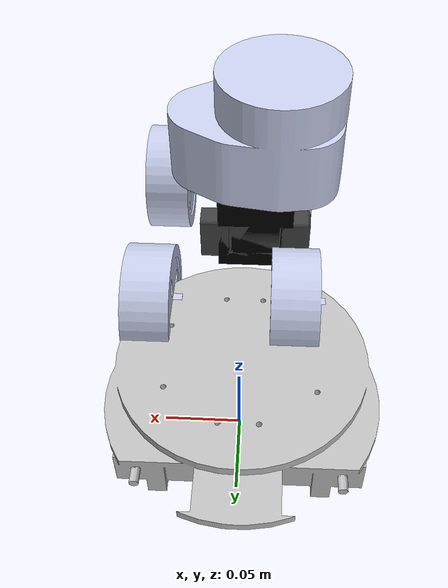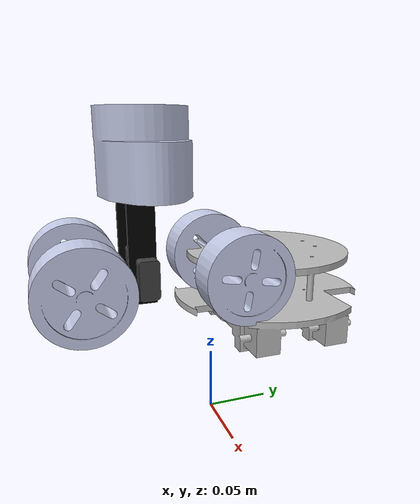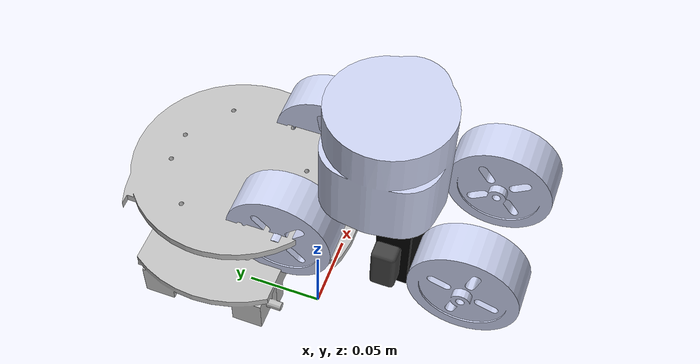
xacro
<?xml version="1.0" encoding="utf-8"?>
<robot
  xmlns:xacro="http://www.ros.org/wiki/xacro"
  name="robot">

  <!-- Material Definitions -->
  <material
    name="chassis_color">
    <color
      rgba="0.752941176470588 0.752941176470588 0.752941176470588 1" />
  </material>

  <material
    name="ebox_color">
    <color
      rgba="0 0 0 1" />
  </material>

  <material
    name="battery_color">
    <color
      rgba="0.250980392156863 0.250980392156863 0.250980392156863 1" />
  </material>

  <material
    name="lidar_color">
    <color
      rgba="0.792156862745098 0.819607843137255 0.933333333333333 1" />
  </material>

  <material
    name="wheel_color">
    <color
      rgba="0.792156862745098 0.819607843137255 0.933333333333333 1" />
  </material>

  <!-- Robot -->

  <!-- BASE LINK -->

  <link
    name="base_link">
  </link>

  <!-- BASE LINK FOOTPRINT -->
  <joint
    name="base_footprint_joint" type="fixed">
      <parent link="base_link"/>
      <child link="base_footprint"/>
      <origin xyz="0 0 0" rpy="0 0 0"/>
  </joint>

  <link name="base_footprint">
  </link>

  <!-- Chassis -->
  <link
    name="chassis_link">
    <inertial>
      <origin
        xyz="-0.00388152940223453 0.0491487550157473 0.0959822836251013"
        rpy="0 0 0" />
      <mass
        value="0.253438557114572" />
      <inertia
        ixx="0.000230915983626972"
        ixy="-1.09834124977415E-21"
        ixz="-1.08995305646286E-20"
        iyy="0.000388552862570868"
        iyz="8.74964921922857E-21"
        izz="0.000171792964937591" />
    </inertial>
    <visual>
      <origin
        xyz="0 0 0"
        rpy="0 0 0" />
      <geometry>
        <mesh
          filename="package://rccar_lab/car_urdf/meshes/base_link.STL" />
      </geometry>
      <material
        name="chassis_color"/>
    </visual>
    <collision>
      <origin
        xyz="0 0 0"
        rpy="0 0 0" />
      <geometry>
        <mesh
          filename="package://rccar_lab/car_urdf/meshes/base_link.STL" />
      </geometry>
    </collision>
  </link>
  <joint
    name="chassis_joint"
    type="fixed">
    <origin
      xyz="-0.00388152940223453 0.0491487550157473 0.0959822836251013"
      rpy="0 0 0" />
    <parent
      link="base_link" />
    <child
      link="chassis_link" />
    <axis
      xyz="0 0 0" />
  </joint>

  <gazebo reference="chassis_link">
      <material>Gazebo/Grey</material>
  </gazebo>

  <!-- Electrical Box -->
  <link
    name="ebox_link">
    <inertial>
      <origin
        xyz="2.38524477946811E-17 0.00665420516682762 1.38777878078145E-17"
        rpy="0 0 0" />
      <mass
        value="0.0194293141652943" />
      <inertia
        ixx="5.88923381835339E-06"
        ixy="-1.73689752951498E-21"
        ixz="1.52034934940776E-21"
        iyy="1.88651943786397E-05"
        iyz="-1.7640556224745E-21"
        izz="1.44863163441747E-05" />
    </inertial>
    <visual>
      <origin
        xyz="0 0 0"
        rpy="0 0 0" />
      <geometry>
        <mesh
          filename="package://rccar_lab/car_urdf/meshes/ebox_link.STL" />
      </geometry>
      <material
        name="ebox_color"/>
    </visual>
    <collision>
      <origin
        xyz="0 0 0"
        rpy="0 0 0" />
      <geometry>
        <mesh
          filename="package://rccar_lab/car_urdf/meshes/ebox_link.STL" />
      </geometry>
    </collision>
  </link>
  <joint
    name="ebox_joint"
    type="fixed">
    <origin
      xyz="-0.0036768 -0.095982 0.0485"
      rpy="${pi/2} 0 0" />
    <parent
      link="chassis_link" />
    <child
      link="ebox_link" />
    <axis
      xyz="0 0 0" />
  </joint>

  <gazebo reference="ebox_link">
    <material>Gazebo/DarkGrey</material>
  </gazebo>

  <!-- Battery -->

  <link
    name="battery_link">
    <inertial>
      <origin
        xyz="-8.23993651088983E-18 0.0074804833993982 -0.000123841648641848"
        rpy="0 0 0" />
      <mass
        value="0.0281697989109725" />
      <inertia
        ixx="1.06924152126357E-05"
        ixy="1.59206567495512E-22"
        ixz="-1.36499816485458E-21"
        iyy="1.21105909928422E-05"
        iyz="6.80855023768559E-11"
        izz="2.44479179923402E-06" />
    </inertial>
    <visual>
      <origin
        xyz="0 0 0"
        rpy="0 0 0" />
      <geometry>
        <mesh
          filename="package://rccar_lab/car_urdf/meshes/battery_link.STL" />
      </geometry>
      <material
        name="battery_color"/>
    </visual>
    <collision>
      <origin
        xyz="0 0 0"
        rpy="0 0 0" />
      <geometry>
        <mesh
          filename="package://rccar_lab/car_urdf/meshes/battery_link.STL" />
      </geometry>
    </collision>
  </link>
  <joint
    name="battery_joint"
    type="fixed">
    <origin
      xyz="-0.0036768 -0.095982 0.0285"
      rpy="${pi/2} 0 0" />
    <parent
      link="chassis_link" />
    <child
      link="battery_link" />
    <axis
      xyz="0 0 0" />
  </joint>

  <gazebo reference="battery_link">
      <material>Gazebo/DarkGrey</material>
  </gazebo>

  <!-- LiDAR -->
  <link
    name="laser_frame">
    <inertial>
      <origin
        xyz="0.00645097632173484 -0.0220370930302956 1.38777878078145E-17"
        rpy="0 0 0" />
      <mass
        value="0.291987614489637" />
      <inertia
        ixx="0.000179322343491855"
        ixy="1.7915823262772E-05"
        ixz="-2.87404142118372E-20"
        iyy="0.00023562662350046"
        iyz="8.52970502955622E-21"
        izz="0.000240449680414699" />
    </inertial>
    <visual>
      <origin
        xyz="0 0 0"
        rpy="${pi/2} 0 0" />
      <geometry>
        <mesh
          filename="package://rccar_lab/car_urdf/meshes/lidar_link.STL" />
      </geometry>
      <material
        name="lidar_color"/>
    </visual>

    <collision>
      <origin
        xyz="0 0 0"
        rpy="0 0 0" />
      <geometry>
        <mesh
          filename="package://rccar_lab/car_urdf/meshes/lidar_link.STL" />
      </geometry>
    </collision>
  </link>
  <joint
    name="lidar_joint"
    type="fixed">
    <origin
      xyz="-0.016177 -0.095982 0.13493"
      rpy="0 0 0" />
    <parent
      link="chassis_link" />
    <child
      link="laser_frame" />
    <axis
      xyz="0 0 0" />
  </joint>

  <gazebo reference="laser_frame">
      <material>Gazebo/DarkGrey</material>
      <sensor name="laser" type="gpu_lidar">
        <pose> 0 0 0 0 0 0 </pose>
        <visualize>true</visualize>
        <update_rate>10</update_rate>
        <topic>scan</topic>
        <gz_frame_id>laser_frame</gz_frame_id>
        <lidar>
          <scan>
            <horizontal>
              <samples>360</samples>
              <resolution>1</resolution>
              <min_angle>-3.14</min_angle>
              <max_angle>3.14</max_angle>
            </horizontal>
          </scan>
          <range>
            <min>0.15</min>
            <max>12</max>
            <resolution>0.01</resolution>
          </range>

          <noise>
            <type>gaussian</type>
            <mean>0.0</mean>
            <stddev>0.001</stddev>
          </noise>

        </lidar>

        <always_on>1</always_on>
        <visualize>1</visualize>

      </sensor>

  </gazebo>

  <!-- Front Right Wheel -->
  <link
    name="fr_wheel_link">
    <inertial>
      <origin
        xyz="-2.77555756156289E-17 -0.0170468370852515 0"
        rpy="0 0 0" />
      <mass
        value="0.0746841951683647" />
      <inertia
        ixx="2.49513056185901E-05"
        ixy="-6.2651021722227E-22"
        ixz="-4.2351647362715E-22"
        iyy="4.21618272671167E-05"
        iyz="4.23110158097473E-21"
        izz="2.49513056185901E-05" />
    </inertial>
    <visual>
      <origin
        xyz="0 0 0"
        rpy="0 0 0" />
      <geometry>
        <mesh
          filename="package://rccar_lab/car_urdf/meshes/fr_wheel_link.STL" />
      </geometry>
      <material
        name="wheel_color"/>
    </visual>
    <collision>
      <origin
        xyz="0 0 0"
        rpy="0 0 0" />
      <geometry>
        <mesh
          filename="package://rccar_lab/car_urdf/meshes/fr_wheel_link.STL" />
      </geometry>
    </collision>
  </link>
  <joint
    name="fr_wheel_joint"
    type="continuous">
    <origin
      xyz="-0.042027 -0.15098 0.0325"
      rpy="3.1416 0.31457 1.5708" />
    <parent
      link="chassis_link" />
    <child
      link="fr_wheel_link" />
    <axis
      xyz="0 1 0" />
  </joint>

  <gazebo reference="fr_wheel_link">
    <material>Gazebo/FlatBlack</material>
  </gazebo>

  <!-- Front Left Wheel -->

  <link
    name="fl_wheel_link">
    <inertial>
      <origin
        xyz="2.77555756156289E-17 -0.0170468370852515 -2.77555756156289E-17"
        rpy="0 0 0" />
      <mass
        value="0.0746841951683647" />
      <inertia
        ixx="2.49513056185901E-05"
        ixy="1.22799028140705E-21"
        ixz="0"
        iyy="4.21618272671167E-05"
        iyz="3.24468513501506E-21"
        izz="2.49513056185901E-05" />
    </inertial>
    <visual>
      <origin
        xyz="0 0 0"
        rpy="0 0 0" />
      <geometry>
        <mesh
          filename="package://rccar_lab/car_urdf/meshes/fl_wheel_link.STL" />
      </geometry>
      <material
        name="wheel_color"/>
    </visual>
    <collision>
      <origin
        xyz="0 0 0"
        rpy="0 0 0" />
      <geometry>
        <mesh
          filename="package://rccar_lab/car_urdf/meshes/fl_wheel_link.STL" />
      </geometry>
    </collision>
  </link>
  <joint
    name="fl_wheel_joint"
    type="continuous">
    <origin
      xyz="0.034673 -0.15098 0.0325"
      rpy="3.1416 0.84097 -1.5708" />
    <parent
      link="chassis_link" />
    <child
      link="fl_wheel_link" />
    <axis
      xyz="0 1 0" />
  </joint>
  <gazebo reference="fr_wheel_link">
    <material>Gazebo/FlatBlack</material>
  </gazebo>

  <!-- Back Left Wheel-->

  <link
    name="bl_wheel_link">
    <inertial>
      <origin
        xyz="4.5102810375397E-17 -0.0170468370852515 -2.08166817117217E-17"
        rpy="0 0 0" />
      <mass
        value="0.0746841951683647" />
      <inertia
        ixx="2.49513056185901E-05"
        ixy="3.43897869697203E-21"
        ixz="-1.6940658945086E-21"
        iyy="4.21618272671167E-05"
        iyz="2.99257736417889E-21"
        izz="2.49513056185901E-05" />
    </inertial>
    <visual>
      <origin
        xyz="0 0 0"
        rpy="0 0 0" />
      <geometry>
        <mesh
          filename="package://rccar_lab/car_urdf/meshes/bl_wheel_link.STL" />
      </geometry>
      <material
        name="wheel_color"/>
    </visual>
    <collision>
      <origin
        xyz="0 0 0"
        rpy="0 0 0" />
      <geometry>
        <mesh
          filename="package://rccar_lab/car_urdf/meshes/bl_wheel_link.STL" />
      </geometry>
    </collision>
  </link>
  <joint
    name="bl_wheel_joint"
    type="continuous">
    <origin
      xyz="0.034673 -0.040982 0.0325"
      rpy="0 -0.54324 1.5708" />
    <parent
      link="chassis_link" />
    <child
      link="bl_wheel_link" />
    <axis
      xyz="0 1 0" />
  </joint>

  <gazebo reference="bl_wheel_link">
    <material>Gazebo/FlatBlack</material>
  </gazebo>

  <!-- Back Right Wheel -->
  <link
    name="br_wheel_link">
    <inertial>
      <origin
        xyz="2.77555756156289E-17 -0.0170468370852515 -3.12250225675825E-17"
        rpy="0 0 0" />
      <mass
        value="0.0746841951683647" />
      <inertia
        ixx="2.49513056185901E-05"
        ixy="3.77954827156255E-21"
        ixz="-3.3881317890172E-21"
        iyy="4.21618272671167E-05"
        iyz="-3.17744074468971E-21"
        izz="2.49513056185901E-05" />
    </inertial>
    <visual>
      <origin
        xyz="0 0 0"
        rpy="0 0 0" />
      <geometry>
        <mesh
          filename="package://rccar_lab/car_urdf/meshes/br_wheel_link.STL" />
      </geometry>
      <material
        name="wheel_color"/>
    </visual>
    <collision>
      <origin
        xyz="0 0 0"
        rpy="0 0 0" />
      <geometry>
        <mesh
          filename="package://rccar_lab/car_urdf/meshes/br_wheel_link.STL" />
      </geometry>
    </collision>
  </link>
  <joint
    name="br_wheel_joint"
    type="continuous">
    <origin
      xyz="-0.044027 -0.040982 0.0325"
      rpy="3.1416 1.1567 1.5708" />
    <parent
      link="chassis_link" />
    <child
      link="br_wheel_link" />
    <axis
      xyz="0 1 0" />
  </joint>

  <gazebo reference="br_wheel_link">
    <material>Gazebo/FlatBlack</material>
  </gazebo>
</robot>
